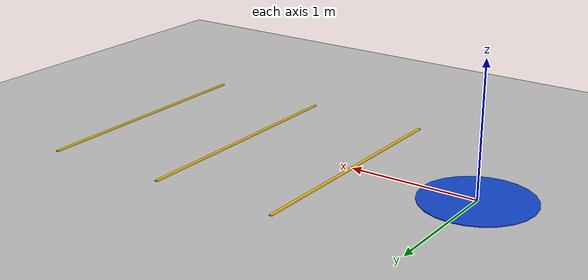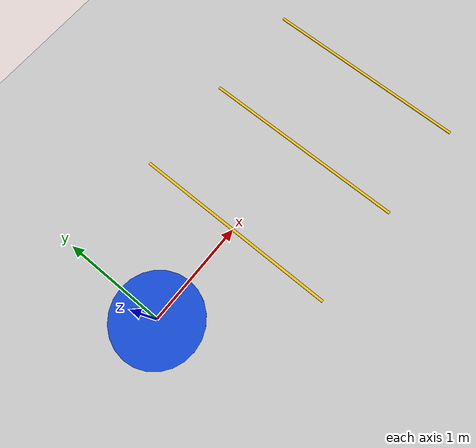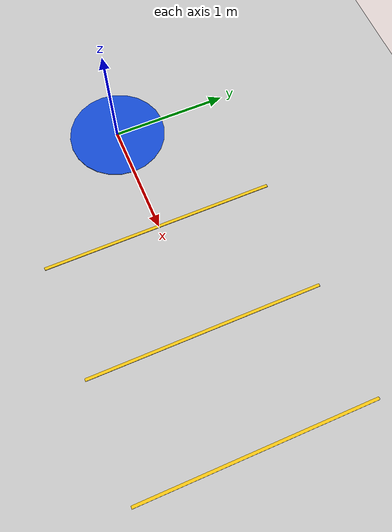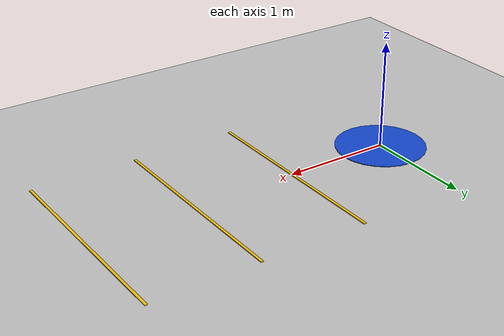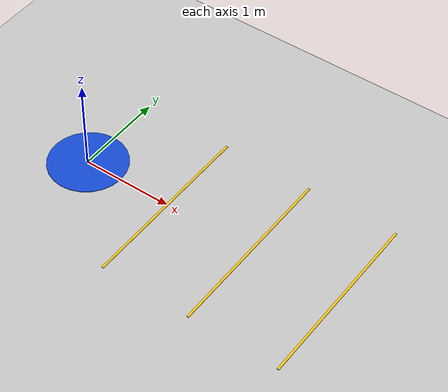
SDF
<?xml version="1.0"?>
<sdf version="1.6">
  <world name="aubo_laser_follow">
    <include><uri>model://ground_plane</uri></include>
    <include><uri>model://sun</uri></include>
    <gui fullscreen="0">
      <camera name="course_camera">
        <pose>5 -6 5 0 0.6 2.0</pose>
        <view_controller>orbit</view_controller>
      </camera>
    </gui>

    <model name="start_marker">
      <static>true</static>
      <pose>0 0 0.003 0 0 0</pose>
      <link name="link"><visual name="visual">
        <geometry><cylinder><radius>0.42</radius><length>0.006</length></cylinder></geometry>
        <material><ambient>0.08 0.20 0.55 1</ambient><diffuse>0.08 0.30 0.85 1</diffuse></material>
      </visual></link>
    </model>
    <model name="distance_ticks">
      <static>true</static>
      <link name="link">
        <visual name="one_metre">
          <pose>1 0 0.004 0 0 0</pose>
          <geometry><box><size>0.025 2 0.008</size></box></geometry>
          <material><ambient>0.8 0.6 0.05 1</ambient><diffuse>1 0.8 0.08 1</diffuse></material>
        </visual>
        <visual name="two_metres">
          <pose>2 0 0.004 0 0 0</pose>
          <geometry><box><size>0.025 2 0.008</size></box></geometry>
          <material><ambient>0.8 0.6 0.05 1</ambient><diffuse>1 0.8 0.08 1</diffuse></material>
        </visual>
        <visual name="three_metres">
          <pose>3 0 0.004 0 0 0</pose>
          <geometry><box><size>0.025 2 0.008</size></box></geometry>
          <material><ambient>0.8 0.6 0.05 1</ambient><diffuse>1 0.8 0.08 1</diffuse></material>
        </visual>
      </link>
    </model>
    <physics name="laser_follow_physics" type="ode">
      <max_step_size>0.001</max_step_size>
      <real_time_update_rate>1000</real_time_update_rate>
      <ode><solver><type>quick</type><iters>100</iters><sor>1.3</sor></solver></ode>
    </physics>
  </world>
</sdf>
